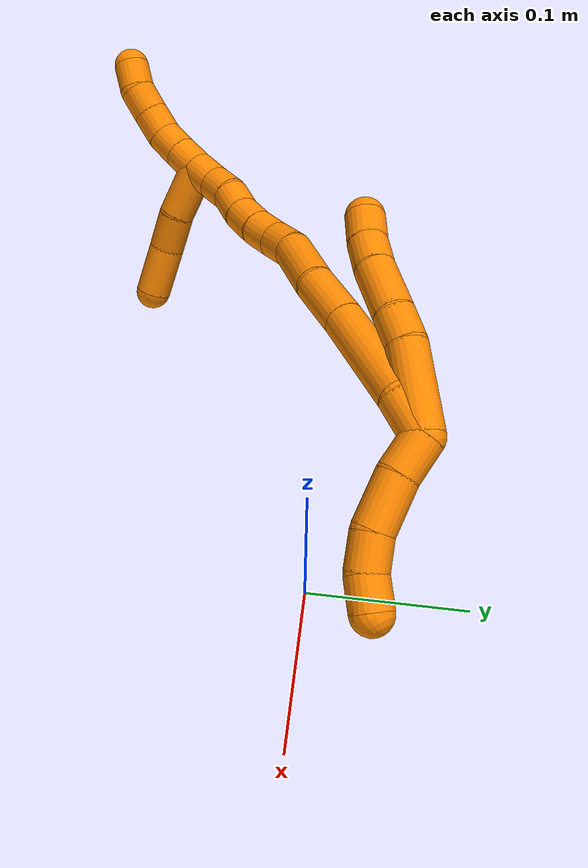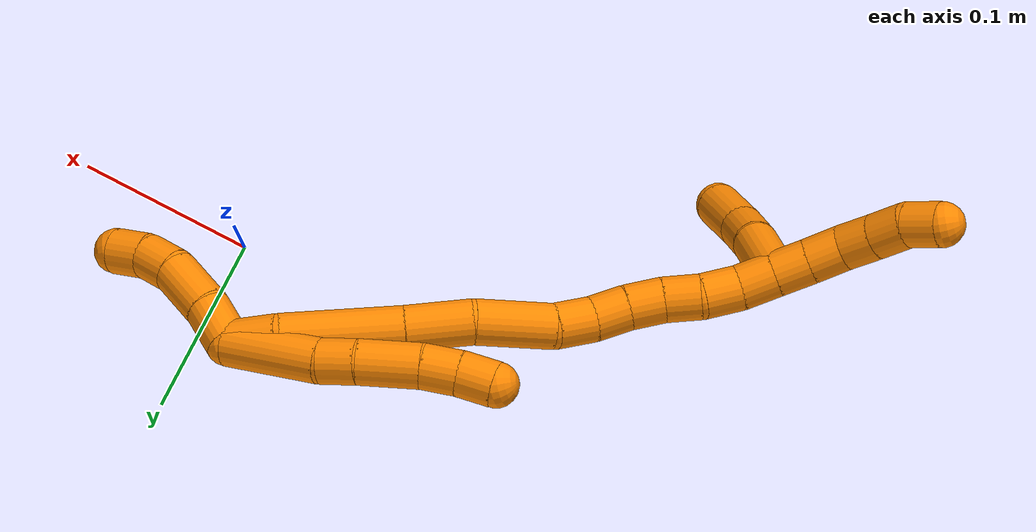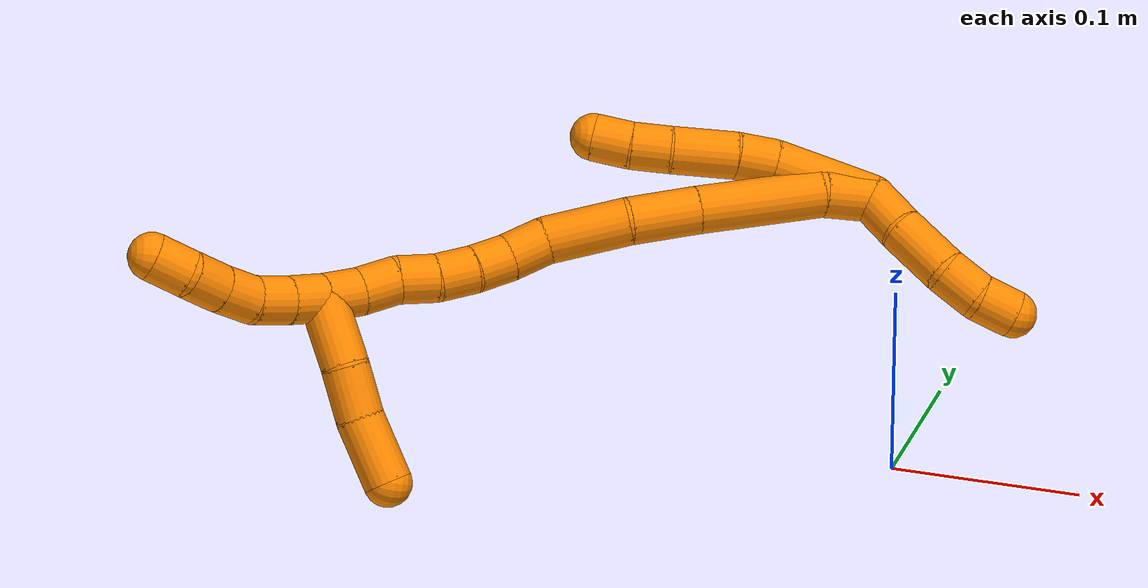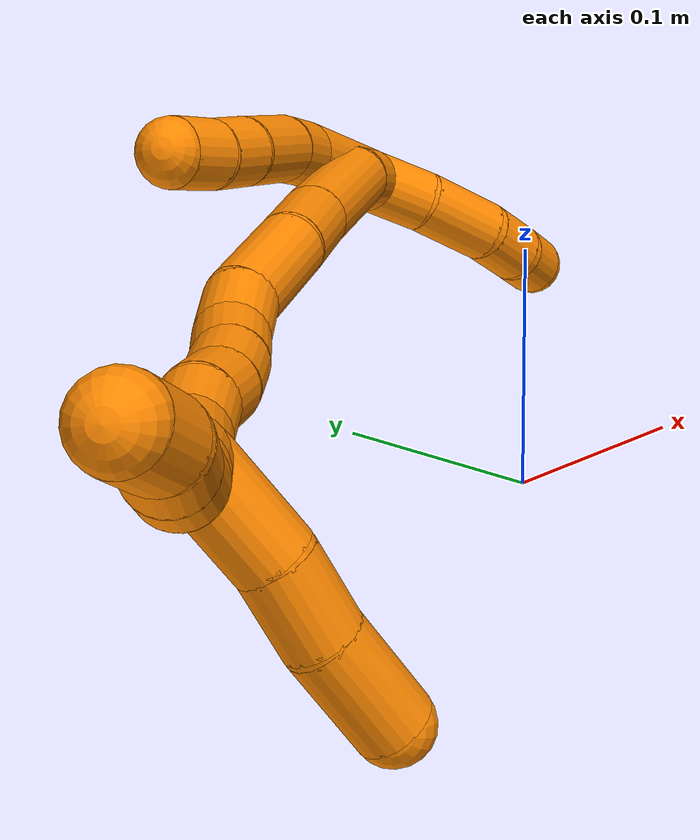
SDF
<sdf version="1.7">
 <world name="default">
  <model name="19">
   <static>0</static>
   <link name="19">
    <collision name="collision-cylinder-e_1_2_8">
     <pose>0.005836 0.007209 0.025607 -0.274407 0.215945 -0.02993</pose>
     <geometry><cylinder><radius>0.0125</radius><length>0.054469</length></cylinder></geometry>
     <surface>
      <friction><ode><mu>1.16</mu><mu2>1.16</mu2><slip1>0</slip1><slip2>0</slip2></ode></friction>
      <contact><ode><kp>1e+06</kp><kd>1</kd><max_vel>0</max_vel><min_depth>0.001</min_depth></ode></contact>
     </surface>
    </collision>
    <visual name="visual-cylinder-e_1_2_8">
     <pose>0.005836 0.007209 0.025607 -0.274407 0.215945 -0.02993</pose>
     <geometry><cylinder><radius>0.0125</radius><length>0.054469</length></cylinder></geometry>
     <material><ambient>0.996078 0.537255 0 1</ambient></material>
    </visual>
    <collision name="collision-cylinder-e_2_8_9">
     <pose>0.012131 0.016217 0.061353 -0.175667 0.04463 -0.003931</pose>
     <geometry><cylinder><radius>0.0125</radius><length>0.020617</length></cylinder></geometry>
     <surface>
      <friction><ode><mu>1.16</mu><mu2>1.16</mu2><slip1>0</slip1><slip2>0</slip2></ode></friction>
      <contact><ode><kp>1e+06</kp><kd>1</kd><max_vel>0</max_vel><min_depth>0.001</min_depth></ode></contact>
     </surface>
    </collision>
    <visual name="visual-cylinder-e_2_8_9">
     <pose>0.012131 0.016217 0.061353 -0.175667 0.04463 -0.003931</pose>
     <geometry><cylinder><radius>0.0125</radius><length>0.020617</length></cylinder></geometry>
     <material><ambient>0.996078 0.537255 0 1</ambient></material>
    </visual>
    <collision name="collision-cylinder-e_3_9_10">
     <pose>0.011804 0.022339 0.088086 -0.254814 -0.045881 0.005878</pose>
     <geometry><cylinder><radius>0.0125</radius><length>0.034328</length></cylinder></geometry>
     <surface>
      <friction><ode><mu>1.16</mu><mu2>1.16</mu2><slip1>0</slip1><slip2>0</slip2></ode></friction>
      <contact><ode><kp>1e+06</kp><kd>1</kd><max_vel>0</max_vel><min_depth>0.001</min_depth></ode></contact>
     </surface>
    </collision>
    <visual name="visual-cylinder-e_3_9_10">
     <pose>0.011804 0.022339 0.088086 -0.254814 -0.045881 0.005878</pose>
     <geometry><cylinder><radius>0.0125</radius><length>0.034328</length></cylinder></geometry>
     <material><ambient>0.996078 0.537255 0 1</ambient></material>
    </visual>
    <collision name="collision-cylinder-e_4_10_11">
     <pose>0.010884 0.030432 0.114205 -0.376975 -0.012959 0.002472</pose>
     <geometry><cylinder><radius>0.0125</radius><length>0.020495</length></cylinder></geometry>
     <surface>
      <friction><ode><mu>1.16</mu><mu2>1.16</mu2><slip1>0</slip1><slip2>0</slip2></ode></friction>
      <contact><ode><kp>1e+06</kp><kd>1</kd><max_vel>0</max_vel><min_depth>0.001</min_depth></ode></contact>
     </surface>
    </collision>
    <visual name="visual-cylinder-e_4_10_11">
     <pose>0.010884 0.030432 0.114205 -0.376975 -0.012959 0.002472</pose>
     <geometry><cylinder><radius>0.0125</radius><length>0.020495</length></cylinder></geometry>
     <material><ambient>0.996078 0.537255 0 1</ambient></material>
    </visual>
    <collision name="collision-cylinder-e_5_11_6">
     <pose>0.01182 0.038486 0.132756 -0.443049 0.106618 -0.024034</pose>
     <geometry><cylinder><radius>0.0125</radius><length>0.020091</length></cylinder></geometry>
     <surface>
      <friction><ode><mu>1.16</mu><mu2>1.16</mu2><slip1>0</slip1><slip2>0</slip2></ode></friction>
      <contact><ode><kp>1e+06</kp><kd>1</kd><max_vel>0</max_vel><min_depth>0.001</min_depth></ode></contact>
     </surface>
    </collision>
    <visual name="visual-cylinder-e_5_11_6">
     <pose>0.01182 0.038486 0.132756 -0.443049 0.106618 -0.024034</pose>
     <geometry><cylinder><radius>0.0125</radius><length>0.020091</length></cylinder></geometry>
     <material><ambient>0.996078 0.537255 0 1</ambient></material>
    </visual>
    <collision name="collision-cylinder-e_1_2_12">
     <pose>-0.007696 -0.008202 -0.0058 2.1863 -0.653732 -1.15972</pose>
     <geometry><cylinder><radius>0.0125</radius><length>0.02531</length></cylinder></geometry>
     <surface>
      <friction><ode><mu>1.16</mu><mu2>1.16</mu2><slip1>0</slip1><slip2>0</slip2></ode></friction>
      <contact><ode><kp>1e+06</kp><kd>1</kd><max_vel>0</max_vel><min_depth>0.001</min_depth></ode></contact>
     </surface>
    </collision>
    <visual name="visual-cylinder-e_1_2_12">
     <pose>-0.007696 -0.008202 -0.0058 2.1863 -0.653732 -1.15972</pose>
     <geometry><cylinder><radius>0.0125</radius><length>0.02531</length></cylinder></geometry>
     <material><ambient>0.996078 0.537255 0 1</ambient></material>
    </visual>
    <collision name="collision-cylinder-e_2_12_13">
     <pose>-0.025056 -0.025257 -0.021233 2.39838 -0.636201 -1.40309</pose>
     <geometry><cylinder><radius>0.0125</radius><length>0.032529</length></cylinder></geometry>
     <surface>
      <friction><ode><mu>1.16</mu><mu2>1.16</mu2><slip1>0</slip1><slip2>0</slip2></ode></friction>
      <contact><ode><kp>1e+06</kp><kd>1</kd><max_vel>0</max_vel><min_depth>0.001</min_depth></ode></contact>
     </surface>
    </collision>
    <visual name="visual-cylinder-e_2_12_13">
     <pose>-0.025056 -0.025257 -0.021233 2.39838 -0.636201 -1.40309</pose>
     <geometry><cylinder><radius>0.0125</radius><length>0.032529</length></cylinder></geometry>
     <material><ambient>0.996078 0.537255 0 1</ambient></material>
    </visual>
    <collision name="collision-cylinder-e_3_13_14">
     <pose>-0.040464 -0.037927 -0.039352 2.71892 -0.553046 -1.84696</pose>
     <geometry><cylinder><radius>0.0125</radius><length>0.021871</length></cylinder></geometry>
     <surface>
      <friction><ode><mu>1.16</mu><mu2>1.16</mu2><slip1>0</slip1><slip2>0</slip2></ode></friction>
      <contact><ode><kp>1e+06</kp><kd>1</kd><max_vel>0</max_vel><min_depth>0.001</min_depth></ode></contact>
     </surface>
    </collision>
    <visual name="visual-cylinder-e_3_13_14">
     <pose>-0.040464 -0.037927 -0.039352 2.71892 -0.553046 -1.84696</pose>
     <geometry><cylinder><radius>0.0125</radius><length>0.021871</length></cylinder></geometry>
     <material><ambient>0.996078 0.537255 0 1</ambient></material>
    </visual>
    <collision name="collision-cylinder-e_4_14_5">
     <pose>-0.049389 -0.043733 -0.057264 2.93362 -0.318918 -1.99036</pose>
     <geometry><cylinder><radius>0.0125</radius><length>0.02029</length></cylinder></geometry>
     <surface>
      <friction><ode><mu>1.16</mu><mu2>1.16</mu2><slip1>0</slip1><slip2>0</slip2></ode></friction>
      <contact><ode><kp>1e+06</kp><kd>1</kd><max_vel>0</max_vel><min_depth>0.001</min_depth></ode></contact>
     </surface>
    </collision>
    <visual name="visual-cylinder-e_4_14_5">
     <pose>-0.049389 -0.043733 -0.057264 2.93362 -0.318918 -1.99036</pose>
     <geometry><cylinder><radius>0.0125</radius><length>0.02029</length></cylinder></geometry>
     <material><ambient>0.996078 0.537255 0 1</ambient></material>
    </visual>
    <collision name="collision-cylinder-e_1_2_15">
     <pose>-0.000767 0.000719 0.013957 -0.051502 -0.054811 0.001412</pose>
     <geometry><cylinder><radius>0.0125</radius><length>0.027993</length></cylinder></geometry>
     <surface>
      <friction><ode><mu>1.16</mu><mu2>1.16</mu2><slip1>0</slip1><slip2>0</slip2></ode></friction>
      <contact><ode><kp>1e+06</kp><kd>1</kd><max_vel>0</max_vel><min_depth>0.001</min_depth></ode></contact>
     </surface>
    </collision>
    <visual name="visual-cylinder-e_1_2_15">
     <pose>-0.000767 0.000719 0.013957 -0.051502 -0.054811 0.001412</pose>
     <geometry><cylinder><radius>0.0125</radius><length>0.027993</length></cylinder></geometry>
     <material><ambient>0.996078 0.537255 0 1</ambient></material>
    </visual>
    <collision name="collision-cylinder-e_2_15_16">
     <pose>-0.010263 0.00789 0.059515 -0.201363 -0.264328 0.026858</pose>
     <geometry><cylinder><radius>0.0125</radius><length>0.066827</length></cylinder></geometry>
     <surface>
      <friction><ode><mu>1.16</mu><mu2>1.16</mu2><slip1>0</slip1><slip2>0</slip2></ode></friction>
      <contact><ode><kp>1e+06</kp><kd>1</kd><max_vel>0</max_vel><min_depth>0.001</min_depth></ode></contact>
     </surface>
    </collision>
    <visual name="visual-cylinder-e_2_15_16">
     <pose>-0.010263 0.00789 0.059515 -0.201363 -0.264328 0.026858</pose>
     <geometry><cylinder><radius>0.0125</radius><length>0.066827</length></cylinder></geometry>
     <material><ambient>0.996078 0.537255 0 1</ambient></material>
    </visual>
    <collision name="collision-cylinder-e_3_16_17">
     <pose>-0.024306 0.017375 0.108508 -0.172736 -0.292337 0.025492</pose>
     <geometry><cylinder><radius>0.0125</radius><length>0.036875</length></cylinder></geometry>
     <surface>
      <friction><ode><mu>1.16</mu><mu2>1.16</mu2><slip1>0</slip1><slip2>0</slip2></ode></friction>
      <contact><ode><kp>1e+06</kp><kd>1</kd><max_vel>0</max_vel><min_depth>0.001</min_depth></ode></contact>
     </surface>
    </collision>
    <visual name="visual-cylinder-e_3_16_17">
     <pose>-0.024306 0.017375 0.108508 -0.172736 -0.292337 0.025492</pose>
     <geometry><cylinder><radius>0.0125</radius><length>0.036875</length></cylinder></geometry>
     <material><ambient>0.996078 0.537255 0 1</ambient></material>
    </visual>
    <collision name="collision-cylinder-e_4_17_18">
     <pose>-0.037148 0.027876 0.145099 -0.370919 -0.350371 0.066392</pose>
     <geometry><cylinder><radius>0.0125</radius><length>0.043864</length></cylinder></geometry>
     <surface>
      <friction><ode><mu>1.16</mu><mu2>1.16</mu2><slip1>0</slip1><slip2>0</slip2></ode></friction>
      <contact><ode><kp>1e+06</kp><kd>1</kd><max_vel>0</max_vel><min_depth>0.001</min_depth></ode></contact>
     </surface>
    </collision>
    <visual name="visual-cylinder-e_4_17_18">
     <pose>-0.037148 0.027876 0.145099 -0.370919 -0.350371 0.066392</pose>
     <geometry><cylinder><radius>0.0125</radius><length>0.043864</length></cylinder></geometry>
     <material><ambient>0.996078 0.537255 0 1</ambient></material>
    </visual>
    <collision name="collision-cylinder-e_5_18_19">
     <pose>-0.05046 0.03703 0.173486 -0.181571 -0.554405 0.051793</pose>
     <geometry><cylinder><radius>0.0125</radius><length>0.021976</length></cylinder></geometry>
     <surface>
      <friction><ode><mu>1.16</mu><mu2>1.16</mu2><slip1>0</slip1><slip2>0</slip2></ode></friction>
      <contact><ode><kp>1e+06</kp><kd>1</kd><max_vel>0</max_vel><min_depth>0.001</min_depth></ode></contact>
     </surface>
    </collision>
    <visual name="visual-cylinder-e_5_18_19">
     <pose>-0.05046 0.03703 0.173486 -0.181571 -0.554405 0.051793</pose>
     <geometry><cylinder><radius>0.0125</radius><length>0.021976</length></cylinder></geometry>
     <material><ambient>0.996078 0.537255 0 1</ambient></material>
    </visual>
    <collision name="collision-cylinder-e_6_19_20">
     <pose>-0.060536 0.038515 0.19171 0.022378 -0.443327 -0.005044</pose>
     <geometry><cylinder><radius>0.0125</radius><length>0.02001</length></cylinder></geometry>
     <surface>
      <friction><ode><mu>1.16</mu><mu2>1.16</mu2><slip1>0</slip1><slip2>0</slip2></ode></friction>
      <contact><ode><kp>1e+06</kp><kd>1</kd><max_vel>0</max_vel><min_depth>0.001</min_depth></ode></contact>
     </surface>
    </collision>
    <visual name="visual-cylinder-e_6_19_20">
     <pose>-0.060536 0.038515 0.19171 0.022378 -0.443327 -0.005044</pose>
     <geometry><cylinder><radius>0.0125</radius><length>0.02001</length></cylinder></geometry>
     <material><ambient>0.996078 0.537255 0 1</ambient></material>
    </visual>
    <collision name="collision-cylinder-e_7_20_21">
     <pose>-0.068379 0.038992 0.210245 -0.07142 -0.35687 0.012886</pose>
     <geometry><cylinder><radius>0.0125</radius><length>0.020327</length></cylinder></geometry>
     <surface>
      <friction><ode><mu>1.16</mu><mu2>1.16</mu2><slip1>0</slip1><slip2>0</slip2></ode></friction>
      <contact><ode><kp>1e+06</kp><kd>1</kd><max_vel>0</max_vel><min_depth>0.001</min_depth></ode></contact>
     </surface>
    </collision>
    <visual name="visual-cylinder-e_7_20_21">
     <pose>-0.068379 0.038992 0.210245 -0.07142 -0.35687 0.012886</pose>
     <geometry><cylinder><radius>0.0125</radius><length>0.020327</length></cylinder></geometry>
     <material><ambient>0.996078 0.537255 0 1</ambient></material>
    </visual>
    <collision name="collision-cylinder-e_8_21_22">
     <pose>-0.073739 0.041162 0.229711 -0.148395 -0.177731 0.013246</pose>
     <geometry><cylinder><radius>0.0125</radius><length>0.020481</length></cylinder></geometry>
     <surface>
      <friction><ode><mu>1.16</mu><mu2>1.16</mu2><slip1>0</slip1><slip2>0</slip2></ode></friction>
      <contact><ode><kp>1e+06</kp><kd>1</kd><max_vel>0</max_vel><min_depth>0.001</min_depth></ode></contact>
     </surface>
    </collision>
    <visual name="visual-cylinder-e_8_21_22">
     <pose>-0.073739 0.041162 0.229711 -0.148395 -0.177731 0.013246</pose>
     <geometry><cylinder><radius>0.0125</radius><length>0.020481</length></cylinder></geometry>
     <material><ambient>0.996078 0.537255 0 1</ambient></material>
    </visual>
    <collision name="collision-cylinder-e_9_22_23">
     <pose>-0.079898 0.043372 0.249235 -0.075266 -0.425995 0.016286</pose>
     <geometry><cylinder><radius>0.0125</radius><length>0.021047</length></cylinder></geometry>
     <surface>
      <friction><ode><mu>1.16</mu><mu2>1.16</mu2><slip1>0</slip1><slip2>0</slip2></ode></friction>
      <contact><ode><kp>1e+06</kp><kd>1</kd><max_vel>0</max_vel><min_depth>0.001</min_depth></ode></contact>
     </surface>
    </collision>
    <visual name="visual-cylinder-e_9_22_23">
     <pose>-0.079898 0.043372 0.249235 -0.075266 -0.425995 0.016286</pose>
     <geometry><cylinder><radius>0.0125</radius><length>0.021047</length></cylinder></geometry>
     <material><ambient>0.996078 0.537255 0 1</ambient></material>
    </visual>
    <collision name="collision-cylinder-e_10_23_1">
     <pose>-0.087193 0.042935 0.268594 0.117547 -0.29003 -0.017186</pose>
     <geometry><cylinder><radius>0.0125</radius><length>0.020602</length></cylinder></geometry>
     <surface>
      <friction><ode><mu>1.16</mu><mu2>1.16</mu2><slip1>0</slip1><slip2>0</slip2></ode></friction>
      <contact><ode><kp>1e+06</kp><kd>1</kd><max_vel>0</max_vel><min_depth>0.001</min_depth></ode></contact>
     </surface>
    </collision>
    <visual name="visual-cylinder-e_10_23_1">
     <pose>-0.087193 0.042935 0.268594 0.117547 -0.29003 -0.017186</pose>
     <geometry><cylinder><radius>0.0125</radius><length>0.020602</length></cylinder></geometry>
     <material><ambient>0.996078 0.537255 0 1</ambient></material>
    </visual>
    <collision name="collision-cylinder-e_1_1_24">
     <pose>-0.106961 0.037439 0.271536 2.57768 -1.12122 -2.27699</pose>
     <geometry><cylinder><radius>0.0125</radius><length>0.037357</length></cylinder></geometry>
     <surface>
      <friction><ode><mu>1.16</mu><mu2>1.16</mu2><slip1>0</slip1><slip2>0</slip2></ode></friction>
      <contact><ode><kp>1e+06</kp><kd>1</kd><max_vel>0</max_vel><min_depth>0.001</min_depth></ode></contact>
     </surface>
    </collision>
    <visual name="visual-cylinder-e_1_1_24">
     <pose>-0.106961 0.037439 0.271536 2.57768 -1.12122 -2.27699</pose>
     <geometry><cylinder><radius>0.0125</radius><length>0.037357</length></cylinder></geometry>
     <material><ambient>0.996078 0.537255 0 1</ambient></material>
    </visual>
    <collision name="collision-cylinder-e_2_24_25">
     <pose>-0.136175 0.032192 0.259397 2.97112 -1.16276 -2.883</pose>
     <geometry><cylinder><radius>0.0125</radius><length>0.026999</length></cylinder></geometry>
     <surface>
      <friction><ode><mu>1.16</mu><mu2>1.16</mu2><slip1>0</slip1><slip2>0</slip2></ode></friction>
      <contact><ode><kp>1e+06</kp><kd>1</kd><max_vel>0</max_vel><min_depth>0.001</min_depth></ode></contact>
     </surface>
    </collision>
    <visual name="visual-cylinder-e_2_24_25">
     <pose>-0.136175 0.032192 0.259397 2.97112 -1.16276 -2.883</pose>
     <geometry><cylinder><radius>0.0125</radius><length>0.026999</length></cylinder></geometry>
     <material><ambient>0.996078 0.537255 0 1</ambient></material>
    </visual>
    <collision name="collision-cylinder-e_3_25_4">
     <pose>-0.163947 0.028369 0.2456 2.81199 -1.04125 -2.577</pose>
     <geometry><cylinder><radius>0.0125</radius><length>0.035644</length></cylinder></geometry>
     <surface>
      <friction><ode><mu>1.16</mu><mu2>1.16</mu2><slip1>0</slip1><slip2>0</slip2></ode></friction>
      <contact><ode><kp>1e+06</kp><kd>1</kd><max_vel>0</max_vel><min_depth>0.001</min_depth></ode></contact>
     </surface>
    </collision>
    <visual name="visual-cylinder-e_3_25_4">
     <pose>-0.163947 0.028369 0.2456 2.81199 -1.04125 -2.577</pose>
     <geometry><cylinder><radius>0.0125</radius><length>0.035644</length></cylinder></geometry>
     <material><ambient>0.996078 0.537255 0 1</ambient></material>
    </visual>
    <collision name="collision-cylinder-e_1_1_26">
     <pose>-0.092126 0.040403 0.2881 0.140763 -0.200011 -0.014147</pose>
     <geometry><cylinder><radius>0.0125</radius><length>0.02</length></cylinder></geometry>
     <surface>
      <friction><ode><mu>1.16</mu><mu2>1.16</mu2><slip1>0</slip1><slip2>0</slip2></ode></friction>
      <contact><ode><kp>1e+06</kp><kd>1</kd><max_vel>0</max_vel><min_depth>0.001</min_depth></ode></contact>
     </surface>
    </collision>
    <visual name="visual-cylinder-e_1_1_26">
     <pose>-0.092126 0.040403 0.2881 0.140763 -0.200011 -0.014147</pose>
     <geometry><cylinder><radius>0.0125</radius><length>0.02</length></cylinder></geometry>
     <material><ambient>0.996078 0.537255 0 1</ambient></material>
    </visual>
    <collision name="collision-cylinder-e_2_26_27">
     <pose>-0.095427 0.037225 0.307552 0.182918 -0.131816 -0.012107</pose>
     <geometry><cylinder><radius>0.0125</radius><length>0.02</length></cylinder></geometry>
     <surface>
      <friction><ode><mu>1.16</mu><mu2>1.16</mu2><slip1>0</slip1><slip2>0</slip2></ode></friction>
      <contact><ode><kp>1e+06</kp><kd>1</kd><max_vel>0</max_vel><min_depth>0.001</min_depth></ode></contact>
     </surface>
    </collision>
    <visual name="visual-cylinder-e_2_26_27">
     <pose>-0.095427 0.037225 0.307552 0.182918 -0.131816 -0.012107</pose>
     <geometry><cylinder><radius>0.0125</radius><length>0.02</length></cylinder></geometry>
     <material><ambient>0.996078 0.537255 0 1</ambient></material>
    </visual>
    <collision name="collision-cylinder-e_3_27_28">
     <pose>-0.09511 0.033296 0.326934 0.217165 0.163881 0.017905</pose>
     <geometry><cylinder><radius>0.0125</radius><length>0.02</length></cylinder></geometry>
     <surface>
      <friction><ode><mu>1.16</mu><mu2>1.16</mu2><slip1>0</slip1><slip2>0</slip2></ode></friction>
      <contact><ode><kp>1e+06</kp><kd>1</kd><max_vel>0</max_vel><min_depth>0.001</min_depth></ode></contact>
     </surface>
    </collision>
    <visual name="visual-cylinder-e_3_27_28">
     <pose>-0.09511 0.033296 0.326934 0.217165 0.163881 0.017905</pose>
     <geometry><cylinder><radius>0.0125</radius><length>0.02</length></cylinder></geometry>
     <material><ambient>0.996078 0.537255 0 1</ambient></material>
    </visual>
    <collision name="collision-cylinder-e_4_28_29">
     <pose>-0.091172 0.028685 0.345976 0.258195 0.232725 0.030347</pose>
     <geometry><cylinder><radius>0.0125</radius><length>0.02</length></cylinder></geometry>
     <surface>
      <friction><ode><mu>1.16</mu><mu2>1.16</mu2><slip1>0</slip1><slip2>0</slip2></ode></friction>
      <contact><ode><kp>1e+06</kp><kd>1</kd><max_vel>0</max_vel><min_depth>0.001</min_depth></ode></contact>
     </surface>
    </collision>
    <visual name="visual-cylinder-e_4_28_29">
     <pose>-0.091172 0.028685 0.345976 0.258195 0.232725 0.030347</pose>
     <geometry><cylinder><radius>0.0125</radius><length>0.02</length></cylinder></geometry>
     <material><ambient>0.996078 0.537255 0 1</ambient></material>
    </visual>
    <collision name="collision-cylinder-e_5_29_3">
     <pose>-0.085917 0.026797 0.364921 -0.062407 0.299347 -0.009414</pose>
     <geometry><cylinder><radius>0.0125</radius><length>0.02</length></cylinder></geometry>
     <surface>
      <friction><ode><mu>1.16</mu><mu2>1.16</mu2><slip1>0</slip1><slip2>0</slip2></ode></friction>
      <contact><ode><kp>1e+06</kp><kd>1</kd><max_vel>0</max_vel><min_depth>0.001</min_depth></ode></contact>
     </surface>
    </collision>
    <visual name="visual-cylinder-e_5_29_3">
     <pose>-0.085917 0.026797 0.364921 -0.062407 0.299347 -0.009414</pose>
     <geometry><cylinder><radius>0.0125</radius><length>0.02</length></cylinder></geometry>
     <material><ambient>0.996078 0.537255 0 1</ambient></material>
    </visual>
    <collision name="collision-sphere-3">
     <pose>-0.082968 0.027393 0.374458 0 -0 0</pose>
     <geometry><sphere><radius>0.0125</radius></sphere></geometry>
     <surface>
      <friction><ode><mu>1.16</mu><mu2>1.16</mu2><slip1>0</slip1><slip2>0</slip2></ode></friction>
      <contact><ode><kp>1e+06</kp><kd>1</kd><max_vel>0</max_vel><min_depth>0.001</min_depth></ode></contact>
     </surface>
    </collision>
    <visual name="visual-sphere-3">
     <pose>-0.082968 0.027393 0.374458 0 -0 0</pose>
     <geometry><sphere><radius>0.0125</radius></sphere></geometry>
     <material><ambient>0.996078 0.537255 0 1</ambient></material>
    </visual>
    <collision name="collision-sphere-29">
     <pose>-0.088866 0.026201 0.355384 0 -0 0</pose>
     <geometry><sphere><radius>0.0125</radius></sphere></geometry>
     <surface>
      <friction><ode><mu>1.16</mu><mu2>1.16</mu2><slip1>0</slip1><slip2>0</slip2></ode></friction>
      <contact><ode><kp>1e+06</kp><kd>1</kd><max_vel>0</max_vel><min_depth>0.001</min_depth></ode></contact>
     </surface>
    </collision>
    <visual name="visual-sphere-29">
     <pose>-0.088866 0.026201 0.355384 0 -0 0</pose>
     <geometry><sphere><radius>0.0125</radius></sphere></geometry>
     <material><ambient>0.996078 0.537255 0 1</ambient></material>
    </visual>
    <collision name="collision-sphere-28">
     <pose>-0.093478 0.03117 0.336568 0 -0 0</pose>
     <geometry><sphere><radius>0.0125</radius></sphere></geometry>
     <surface>
      <friction><ode><mu>1.16</mu><mu2>1.16</mu2><slip1>0</slip1><slip2>0</slip2></ode></friction>
      <contact><ode><kp>1e+06</kp><kd>1</kd><max_vel>0</max_vel><min_depth>0.001</min_depth></ode></contact>
     </surface>
    </collision>
    <visual name="visual-sphere-28">
     <pose>-0.093478 0.03117 0.336568 0 -0 0</pose>
     <geometry><sphere><radius>0.0125</radius></sphere></geometry>
     <material><ambient>0.996078 0.537255 0 1</ambient></material>
    </visual>
    <collision name="collision-sphere-27">
     <pose>-0.096741 0.035421 0.3173 0 -0 0</pose>
     <geometry><sphere><radius>0.0125</radius></sphere></geometry>
     <surface>
      <friction><ode><mu>1.16</mu><mu2>1.16</mu2><slip1>0</slip1><slip2>0</slip2></ode></friction>
      <contact><ode><kp>1e+06</kp><kd>1</kd><max_vel>0</max_vel><min_depth>0.001</min_depth></ode></contact>
     </surface>
    </collision>
    <visual name="visual-sphere-27">
     <pose>-0.096741 0.035421 0.3173 0 -0 0</pose>
     <geometry><sphere><radius>0.0125</radius></sphere></geometry>
     <material><ambient>0.996078 0.537255 0 1</ambient></material>
    </visual>
    <collision name="collision-sphere-26">
     <pose>-0.094113 0.039028 0.297804 0 -0 0</pose>
     <geometry><sphere><radius>0.0125</radius></sphere></geometry>
     <surface>
      <friction><ode><mu>1.16</mu><mu2>1.16</mu2><slip1>0</slip1><slip2>0</slip2></ode></friction>
      <contact><ode><kp>1e+06</kp><kd>1</kd><max_vel>0</max_vel><min_depth>0.001</min_depth></ode></contact>
     </surface>
    </collision>
    <visual name="visual-sphere-26">
     <pose>-0.094113 0.039028 0.297804 0 -0 0</pose>
     <geometry><sphere><radius>0.0125</radius></sphere></geometry>
     <material><ambient>0.996078 0.537255 0 1</ambient></material>
    </visual>
    <collision name="collision-sphere-4">
     <pose>-0.179328 0.025455 0.237081 0 -0 0</pose>
     <geometry><sphere><radius>0.0125</radius></sphere></geometry>
     <surface>
      <friction><ode><mu>1.16</mu><mu2>1.16</mu2><slip1>0</slip1><slip2>0</slip2></ode></friction>
      <contact><ode><kp>1e+06</kp><kd>1</kd><max_vel>0</max_vel><min_depth>0.001</min_depth></ode></contact>
     </surface>
    </collision>
    <visual name="visual-sphere-4">
     <pose>-0.179328 0.025455 0.237081 0 -0 0</pose>
     <geometry><sphere><radius>0.0125</radius></sphere></geometry>
     <material><ambient>0.996078 0.537255 0 1</ambient></material>
    </visual>
    <collision name="collision-sphere-25">
     <pose>-0.148566 0.031283 0.254118 0 -0 0</pose>
     <geometry><sphere><radius>0.0125</radius></sphere></geometry>
     <surface>
      <friction><ode><mu>1.16</mu><mu2>1.16</mu2><slip1>0</slip1><slip2>0</slip2></ode></friction>
      <contact><ode><kp>1e+06</kp><kd>1</kd><max_vel>0</max_vel><min_depth>0.001</min_depth></ode></contact>
     </surface>
    </collision>
    <visual name="visual-sphere-25">
     <pose>-0.148566 0.031283 0.254118 0 -0 0</pose>
     <geometry><sphere><radius>0.0125</radius></sphere></geometry>
     <material><ambient>0.996078 0.537255 0 1</ambient></material>
    </visual>
    <collision name="collision-sphere-24">
     <pose>-0.123784 0.0331 0.264676 0 -0 0</pose>
     <geometry><sphere><radius>0.0125</radius></sphere></geometry>
     <surface>
      <friction><ode><mu>1.16</mu><mu2>1.16</mu2><slip1>0</slip1><slip2>0</slip2></ode></friction>
      <contact><ode><kp>1e+06</kp><kd>1</kd><max_vel>0</max_vel><min_depth>0.001</min_depth></ode></contact>
     </surface>
    </collision>
    <visual name="visual-sphere-24">
     <pose>-0.123784 0.0331 0.264676 0 -0 0</pose>
     <geometry><sphere><radius>0.0125</radius></sphere></geometry>
     <material><ambient>0.996078 0.537255 0 1</ambient></material>
    </visual>
    <collision name="collision-sphere-1">
     <pose>-0.090139 0.041778 0.278397 0 -0 0</pose>
     <geometry><sphere><radius>0.0125</radius></sphere></geometry>
     <surface>
      <friction><ode><mu>1.16</mu><mu2>1.16</mu2><slip1>0</slip1><slip2>0</slip2></ode></friction>
      <contact><ode><kp>1e+06</kp><kd>1</kd><max_vel>0</max_vel><min_depth>0.001</min_depth></ode></contact>
     </surface>
    </collision>
    <visual name="visual-sphere-1">
     <pose>-0.090139 0.041778 0.278397 0 -0 0</pose>
     <geometry><sphere><radius>0.0125</radius></sphere></geometry>
     <material><ambient>0.996078 0.537255 0 1</ambient></material>
    </visual>
    <collision name="collision-sphere-23">
     <pose>-0.084247 0.044093 0.258791 0 -0 0</pose>
     <geometry><sphere><radius>0.0125</radius></sphere></geometry>
     <surface>
      <friction><ode><mu>1.16</mu><mu2>1.16</mu2><slip1>0</slip1><slip2>0</slip2></ode></friction>
      <contact><ode><kp>1e+06</kp><kd>1</kd><max_vel>0</max_vel><min_depth>0.001</min_depth></ode></contact>
     </surface>
    </collision>
    <visual name="visual-sphere-23">
     <pose>-0.084247 0.044093 0.258791 0 -0 0</pose>
     <geometry><sphere><radius>0.0125</radius></sphere></geometry>
     <material><ambient>0.996078 0.537255 0 1</ambient></material>
    </visual>
    <collision name="collision-sphere-22">
     <pose>-0.07555 0.042652 0.23968 0 -0 0</pose>
     <geometry><sphere><radius>0.0125</radius></sphere></geometry>
     <surface>
      <friction><ode><mu>1.16</mu><mu2>1.16</mu2><slip1>0</slip1><slip2>0</slip2></ode></friction>
      <contact><ode><kp>1e+06</kp><kd>1</kd><max_vel>0</max_vel><min_depth>0.001</min_depth></ode></contact>
     </surface>
    </collision>
    <visual name="visual-sphere-22">
     <pose>-0.07555 0.042652 0.23968 0 -0 0</pose>
     <geometry><sphere><radius>0.0125</radius></sphere></geometry>
     <material><ambient>0.996078 0.537255 0 1</ambient></material>
    </visual>
    <collision name="collision-sphere-21">
     <pose>-0.071929 0.039671 0.219743 0 -0 0</pose>
     <geometry><sphere><radius>0.0125</radius></sphere></geometry>
     <surface>
      <friction><ode><mu>1.16</mu><mu2>1.16</mu2><slip1>0</slip1><slip2>0</slip2></ode></friction>
      <contact><ode><kp>1e+06</kp><kd>1</kd><max_vel>0</max_vel><min_depth>0.001</min_depth></ode></contact>
     </surface>
    </collision>
    <visual name="visual-sphere-21">
     <pose>-0.071929 0.039671 0.219743 0 -0 0</pose>
     <geometry><sphere><radius>0.0125</radius></sphere></geometry>
     <material><ambient>0.996078 0.537255 0 1</ambient></material>
    </visual>
    <collision name="collision-sphere-6">
     <pose>0.012889 0.042768 0.14178 0 -0 0</pose>
     <geometry><sphere><radius>0.0125</radius></sphere></geometry>
     <surface>
      <friction><ode><mu>1.16</mu><mu2>1.16</mu2><slip1>0</slip1><slip2>0</slip2></ode></friction>
      <contact><ode><kp>1e+06</kp><kd>1</kd><max_vel>0</max_vel><min_depth>0.001</min_depth></ode></contact>
     </surface>
    </collision>
    <visual name="visual-sphere-6">
     <pose>0.012889 0.042768 0.14178 0 -0 0</pose>
     <geometry><sphere><radius>0.0125</radius></sphere></geometry>
     <material><ambient>0.996078 0.537255 0 1</ambient></material>
    </visual>
    <collision name="collision-sphere-11">
     <pose>0.010751 0.034204 0.123732 0 -0 0</pose>
     <geometry><sphere><radius>0.0125</radius></sphere></geometry>
     <surface>
      <friction><ode><mu>1.16</mu><mu2>1.16</mu2><slip1>0</slip1><slip2>0</slip2></ode></friction>
      <contact><ode><kp>1e+06</kp><kd>1</kd><max_vel>0</max_vel><min_depth>0.001</min_depth></ode></contact>
     </surface>
    </collision>
    <visual name="visual-sphere-11">
     <pose>0.010751 0.034204 0.123732 0 -0 0</pose>
     <geometry><sphere><radius>0.0125</radius></sphere></geometry>
     <material><ambient>0.996078 0.537255 0 1</ambient></material>
    </visual>
    <collision name="collision-sphere-10">
     <pose>0.011017 0.02666 0.104678 0 -0 0</pose>
     <geometry><sphere><radius>0.0125</radius></sphere></geometry>
     <surface>
      <friction><ode><mu>1.16</mu><mu2>1.16</mu2><slip1>0</slip1><slip2>0</slip2></ode></friction>
      <contact><ode><kp>1e+06</kp><kd>1</kd><max_vel>0</max_vel><min_depth>0.001</min_depth></ode></contact>
     </surface>
    </collision>
    <visual name="visual-sphere-10">
     <pose>0.011017 0.02666 0.104678 0 -0 0</pose>
     <geometry><sphere><radius>0.0125</radius></sphere></geometry>
     <material><ambient>0.996078 0.537255 0 1</ambient></material>
    </visual>
    <collision name="collision-sphere-9">
     <pose>0.012591 0.018017 0.071493 0 -0 0</pose>
     <geometry><sphere><radius>0.0125</radius></sphere></geometry>
     <surface>
      <friction><ode><mu>1.16</mu><mu2>1.16</mu2><slip1>0</slip1><slip2>0</slip2></ode></friction>
      <contact><ode><kp>1e+06</kp><kd>1</kd><max_vel>0</max_vel><min_depth>0.001</min_depth></ode></contact>
     </surface>
    </collision>
    <visual name="visual-sphere-9">
     <pose>0.012591 0.018017 0.071493 0 -0 0</pose>
     <geometry><sphere><radius>0.0125</radius></sphere></geometry>
     <material><ambient>0.996078 0.537255 0 1</ambient></material>
    </visual>
    <collision name="collision-sphere-2">
     <geometry><sphere><radius>0.0125</radius></sphere></geometry>
     <surface>
      <friction><ode><mu>1.16</mu><mu2>1.16</mu2><slip1>0</slip1><slip2>0</slip2></ode></friction>
      <contact><ode><kp>1e+06</kp><kd>1</kd><max_vel>0</max_vel><min_depth>0.001</min_depth></ode></contact>
     </surface>
    </collision>
    <visual name="visual-sphere-2">
     <geometry><sphere><radius>0.0125</radius></sphere></geometry>
     <material><ambient>0.996078 0.537255 0 1</ambient></material>
    </visual>
    <collision name="collision-sphere-19">
     <pose>-0.056245 0.038717 0.182675 0 -0 0</pose>
     <geometry><sphere><radius>0.0125</radius></sphere></geometry>
     <surface>
      <friction><ode><mu>1.16</mu><mu2>1.16</mu2><slip1>0</slip1><slip2>0</slip2></ode></friction>
      <contact><ode><kp>1e+06</kp><kd>1</kd><max_vel>0</max_vel><min_depth>0.001</min_depth></ode></contact>
     </surface>
    </collision>
    <visual name="visual-sphere-19">
     <pose>-0.056245 0.038717 0.182675 0 -0 0</pose>
     <geometry><sphere><radius>0.0125</radius></sphere></geometry>
     <material><ambient>0.996078 0.537255 0 1</ambient></material>
    </visual>
    <collision name="collision-sphere-8">
     <pose>0.011671 0.014417 0.051213 0 -0 0</pose>
     <geometry><sphere><radius>0.0125</radius></sphere></geometry>
     <surface>
      <friction><ode><mu>1.16</mu><mu2>1.16</mu2><slip1>0</slip1><slip2>0</slip2></ode></friction>
      <contact><ode><kp>1e+06</kp><kd>1</kd><max_vel>0</max_vel><min_depth>0.001</min_depth></ode></contact>
     </surface>
    </collision>
    <visual name="visual-sphere-8">
     <pose>0.011671 0.014417 0.051213 0 -0 0</pose>
     <geometry><sphere><radius>0.0125</radius></sphere></geometry>
     <material><ambient>0.996078 0.537255 0 1</ambient></material>
    </visual>
    <collision name="collision-sphere-12">
     <pose>-0.015392 -0.016404 -0.0116 0 -0 0</pose>
     <geometry><sphere><radius>0.0125</radius></sphere></geometry>
     <surface>
      <friction><ode><mu>1.16</mu><mu2>1.16</mu2><slip1>0</slip1><slip2>0</slip2></ode></friction>
      <contact><ode><kp>1e+06</kp><kd>1</kd><max_vel>0</max_vel><min_depth>0.001</min_depth></ode></contact>
     </surface>
    </collision>
    <visual name="visual-sphere-12">
     <pose>-0.015392 -0.016404 -0.0116 0 -0 0</pose>
     <geometry><sphere><radius>0.0125</radius></sphere></geometry>
     <material><ambient>0.996078 0.537255 0 1</ambient></material>
    </visual>
    <collision name="collision-sphere-13">
     <pose>-0.03472 -0.03411 -0.030866 0 -0 0</pose>
     <geometry><sphere><radius>0.0125</radius></sphere></geometry>
     <surface>
      <friction><ode><mu>1.16</mu><mu2>1.16</mu2><slip1>0</slip1><slip2>0</slip2></ode></friction>
      <contact><ode><kp>1e+06</kp><kd>1</kd><max_vel>0</max_vel><min_depth>0.001</min_depth></ode></contact>
     </surface>
    </collision>
    <visual name="visual-sphere-13">
     <pose>-0.03472 -0.03411 -0.030866 0 -0 0</pose>
     <geometry><sphere><radius>0.0125</radius></sphere></geometry>
     <material><ambient>0.996078 0.537255 0 1</ambient></material>
    </visual>
    <collision name="collision-sphere-14">
     <pose>-0.046208 -0.041744 -0.047838 0 -0 0</pose>
     <geometry><sphere><radius>0.0125</radius></sphere></geometry>
     <surface>
      <friction><ode><mu>1.16</mu><mu2>1.16</mu2><slip1>0</slip1><slip2>0</slip2></ode></friction>
      <contact><ode><kp>1e+06</kp><kd>1</kd><max_vel>0</max_vel><min_depth>0.001</min_depth></ode></contact>
     </surface>
    </collision>
    <visual name="visual-sphere-14">
     <pose>-0.046208 -0.041744 -0.047838 0 -0 0</pose>
     <geometry><sphere><radius>0.0125</radius></sphere></geometry>
     <material><ambient>0.996078 0.537255 0 1</ambient></material>
    </visual>
    <collision name="collision-sphere-5">
     <pose>-0.05257 -0.045722 -0.06669 0 -0 0</pose>
     <geometry><sphere><radius>0.0125</radius></sphere></geometry>
     <surface>
      <friction><ode><mu>1.16</mu><mu2>1.16</mu2><slip1>0</slip1><slip2>0</slip2></ode></friction>
      <contact><ode><kp>1e+06</kp><kd>1</kd><max_vel>0</max_vel><min_depth>0.001</min_depth></ode></contact>
     </surface>
    </collision>
    <visual name="visual-sphere-5">
     <pose>-0.05257 -0.045722 -0.06669 0 -0 0</pose>
     <geometry><sphere><radius>0.0125</radius></sphere></geometry>
     <material><ambient>0.996078 0.537255 0 1</ambient></material>
    </visual>
    <collision name="collision-sphere-15">
     <pose>-0.001534 0.001439 0.027913 0 -0 0</pose>
     <geometry><sphere><radius>0.0125</radius></sphere></geometry>
     <surface>
      <friction><ode><mu>1.16</mu><mu2>1.16</mu2><slip1>0</slip1><slip2>0</slip2></ode></friction>
      <contact><ode><kp>1e+06</kp><kd>1</kd><max_vel>0</max_vel><min_depth>0.001</min_depth></ode></contact>
     </surface>
    </collision>
    <visual name="visual-sphere-15">
     <pose>-0.001534 0.001439 0.027913 0 -0 0</pose>
     <geometry><sphere><radius>0.0125</radius></sphere></geometry>
     <material><ambient>0.996078 0.537255 0 1</ambient></material>
    </visual>
    <collision name="collision-sphere-16">
     <pose>-0.018993 0.01434 0.091116 0 -0 0</pose>
     <geometry><sphere><radius>0.0125</radius></sphere></geometry>
     <surface>
      <friction><ode><mu>1.16</mu><mu2>1.16</mu2><slip1>0</slip1><slip2>0</slip2></ode></friction>
      <contact><ode><kp>1e+06</kp><kd>1</kd><max_vel>0</max_vel><min_depth>0.001</min_depth></ode></contact>
     </surface>
    </collision>
    <visual name="visual-sphere-16">
     <pose>-0.018993 0.01434 0.091116 0 -0 0</pose>
     <geometry><sphere><radius>0.0125</radius></sphere></geometry>
     <material><ambient>0.996078 0.537255 0 1</ambient></material>
    </visual>
    <collision name="collision-sphere-17">
     <pose>-0.02962 0.020409 0.1259 0 -0 0</pose>
     <geometry><sphere><radius>0.0125</radius></sphere></geometry>
     <surface>
      <friction><ode><mu>1.16</mu><mu2>1.16</mu2><slip1>0</slip1><slip2>0</slip2></ode></friction>
      <contact><ode><kp>1e+06</kp><kd>1</kd><max_vel>0</max_vel><min_depth>0.001</min_depth></ode></contact>
     </surface>
    </collision>
    <visual name="visual-sphere-17">
     <pose>-0.02962 0.020409 0.1259 0 -0 0</pose>
     <geometry><sphere><radius>0.0125</radius></sphere></geometry>
     <material><ambient>0.996078 0.537255 0 1</ambient></material>
    </visual>
    <collision name="collision-sphere-18">
     <pose>-0.044676 0.035343 0.164298 0 -0 0</pose>
     <geometry><sphere><radius>0.0125</radius></sphere></geometry>
     <surface>
      <friction><ode><mu>1.16</mu><mu2>1.16</mu2><slip1>0</slip1><slip2>0</slip2></ode></friction>
      <contact><ode><kp>1e+06</kp><kd>1</kd><max_vel>0</max_vel><min_depth>0.001</min_depth></ode></contact>
     </surface>
    </collision>
    <visual name="visual-sphere-18">
     <pose>-0.044676 0.035343 0.164298 0 -0 0</pose>
     <geometry><sphere><radius>0.0125</radius></sphere></geometry>
     <material><ambient>0.996078 0.537255 0 1</ambient></material>
    </visual>
    <collision name="collision-sphere-20">
     <pose>-0.064828 0.038312 0.200746 0 -0 0</pose>
     <geometry><sphere><radius>0.0125</radius></sphere></geometry>
     <surface>
      <friction><ode><mu>1.16</mu><mu2>1.16</mu2><slip1>0</slip1><slip2>0</slip2></ode></friction>
      <contact><ode><kp>1e+06</kp><kd>1</kd><max_vel>0</max_vel><min_depth>0.001</min_depth></ode></contact>
     </surface>
    </collision>
    <visual name="visual-sphere-20">
     <pose>-0.064828 0.038312 0.200746 0 -0 0</pose>
     <geometry><sphere><radius>0.0125</radius></sphere></geometry>
     <material><ambient>0.996078 0.537255 0 1</ambient></material>
    </visual>
    <inertial>
     <pose>-0.048141 0.018907 0.144723 0 -0 0</pose>
     <mass>0.75</mass>
     <inertia><ixx>5.2e-05</ixx><ixy>0</ixy><ixz>0</ixz><iyy>9e-05</iyy><iyz>0</iyz><izz>5.2e-05</izz></inertia>
    </inertial>
   </link>
   <pose>-0.029681 0.058951 0.125182 -0.954558 -1.07082 1.63121</pose>
  </model>
 </world>
</sdf>
